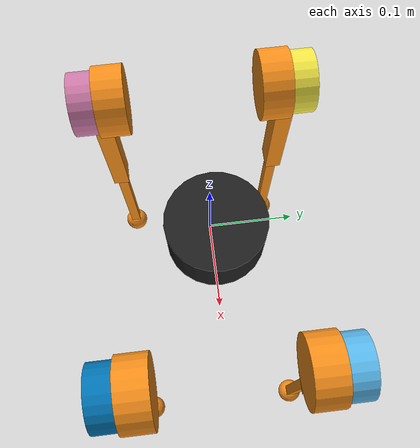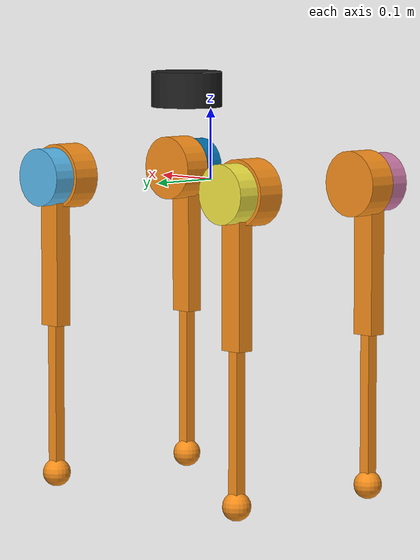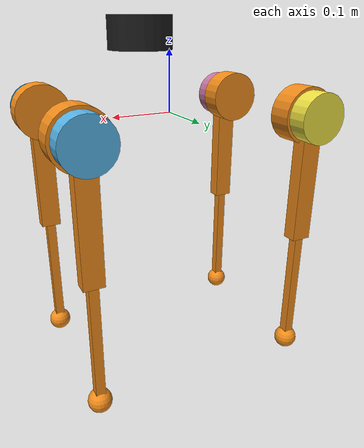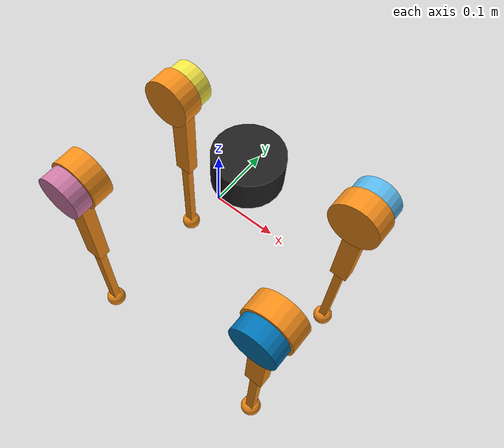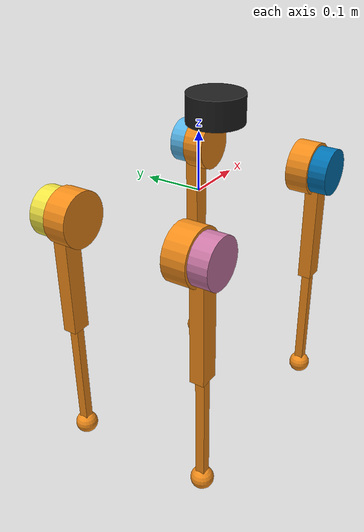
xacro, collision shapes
<?xml version="1.0"?>

<robot name="laikago" xmlns:xacro="http://www.ros.org/wiki/xacro">

    <xacro:arg name="DEBUG" default="false"/>

    <xacro:include filename="$(find arena-simulation-setup)/robot/laikago/urdf/const.xacro"/>
    <xacro:include filename="$(find arena-simulation-setup)/robot/laikago/urdf/materials.xacro"/>
    <xacro:include filename="$(find arena-simulation-setup)/robot/laikago/urdf/leg.xacro"/>
    <xacro:include filename="$(find arena-simulation-setup)/robot/laikago/urdf/gazebo.xacro"/>
    <xacro:include filename="$(find arena-simulation-setup)/robot/laikago/urdf/lidar.xacro"/>

    <!-- Rollover Protection mode will add an additional stick on the top, use "true" or "false" to switch it. -->
    <xacro:property name="rolloverProtection" value="false"/>

    <!-- Debug mode will hung up the robot, use "true" or "false" to switch it. -->
    <xacro:if value="$(arg DEBUG)">
        <link name="world"/>
        <joint name="base_static_joint" type="fixed">
            <origin rpy="0 0 0" xyz="0 0 0"/>
            <parent link="world"/>
            <child link="base"/>
        </joint>
    </xacro:if>

    <link name="base">
        <visual>
            <origin rpy="0 0 0" xyz="0 0 0"/>
            <geometry>
                <box size="0.001 0.001 0.001"/>
            </geometry>
        </visual>
    </link>

    <joint name="floating_base" type="fixed">
        <origin rpy="0 0 0" xyz="0 0 0"/>
        <parent link="base"/>
        <child link="trunk"/>
    </joint>

    <link name="trunk">
        <visual>
            <origin rpy="0 0 0" xyz="0 0 0"/>
            <geometry>
                <mesh filename="package://arena-simulation-setup/robot/laikago/urdf/meshes/trunk.dae" scale="1 1 1"/>
            </geometry>
            <material name="orange"/>
        </visual>
        <collision>
            <origin rpy="0 0 0" xyz="0 0 ${trunk_offset_z}"/>
            <geometry>
                <box size="${trunk_length} ${trunk_width} ${trunk_height}"/>
            </geometry>
        </collision>
        <inertial>
            <origin rpy="0 0 0" xyz="${trunk_com_x} ${trunk_com_y} ${trunk_com_z}"/>
            <mass value="${trunk_mass}"/>
            <inertia
                ixx="${trunk_ixx}" ixy="${trunk_ixy}" ixz="${trunk_ixz}"
                iyy="${trunk_iyy}" iyz="${trunk_iyz}"
                izz="${trunk_izz}"/>
        </inertial>
    </link>

    <xacro:if value="${(rolloverProtection == 'true')}">
        <joint name="stick_joint" type="fixed">
            <parent link="trunk"/>
            <child link="stick_link"/>
            <origin rpy="0 0 0" xyz="${0.18} 0 ${stick_length/2.0+0.08}"/>
        </joint>

        <link name="stick_link">
            <visual>
                <geometry>
                    <cylinder length="${stick_length}" radius="${stick_radius}"/>
                </geometry>
                <origin rpy="0 0 0" xyz="0 0 0"/>
                <material name="white"/>
            </visual>
            <collision>
                <geometry>
                    <cylinder length="${stick_length}" radius="${stick_radius}"/>
                </geometry>
                <origin rpy="0 0 0" xyz="0 0 0"/>
            </collision>
            <inertial>
                <mass value="${stick_mass}"/>
                <inertia
                    ixx="${stick_mass / 2.0 * (stick_radius*stick_radius)}" ixy="0.0" ixz="0.0"
                    iyy="${stick_mass / 12.0 * (3*stick_radius*stick_radius + stick_length*stick_length)}" iyz="0.0"
                    izz="${stick_mass / 12.0 * (3*stick_radius*stick_radius + stick_length*stick_length)}"/>
            </inertial>
        </link>
    </xacro:if>

    <joint name="imu_joint" type="fixed">
        <parent link="trunk"/>
        <child link="imu_link"/>
        <origin rpy="0 0 0" xyz="0 0 0"/>
    </joint>

    <link name="imu_link">
        <inertial>
            <mass value="0.001"/>
            <origin rpy="0 0 0" xyz="0 0 0"/>
            <inertia ixx="0.0001" ixy="0" ixz="0" iyy="0.0001" iyz="0" izz="0.0001"/>
        </inertial>
        <visual>
            <origin rpy="0 0 0" xyz="0 0 0"/>
            <geometry>
                <box size="0.001 0.001 0.001"/>
            </geometry>
            <material name="red"/>
        </visual>
        <collision>
            <origin rpy="0 0 0" xyz="0 0 0"/>
            <geometry>
                <box size=".001 .001 .001"/>
            </geometry>
        </collision>
    </link>
    <xacro:leg name="FR" mirror="-1" mirror_dae="False" front_hind="1" front_hind_dae="True">
        <origin rpy="0 0 0" xyz="${leg_offset_x} ${-leg_offset_y} 0"/>
    </xacro:leg>

    <xacro:leg name="FL" mirror="1" mirror_dae="True" front_hind="1" front_hind_dae="True">
        <origin rpy="0 0 0" xyz="${leg_offset_x} ${leg_offset_y} 0"/>
    </xacro:leg>

    <xacro:leg name="RR" mirror="-1" mirror_dae="False" front_hind="-1" front_hind_dae="False">
        <origin rpy="0 0 0" xyz="${-leg_offset_x} ${-leg_offset_y} 0"/>
    </xacro:leg>

    <xacro:leg name="RL" mirror="1" mirror_dae="True" front_hind="-1" front_hind_dae="False">
        <origin rpy="0 0 0" xyz="${-leg_offset_x} ${leg_offset_y} 0"/>
    </xacro:leg>

    <xacro:lidar parent="trunk">
        <origin rpy="0 0 0" xyz="0.05 0 0.125"/>
    </xacro:lidar>

</robot>

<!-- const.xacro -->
<robot xmlns:xacro="http://www.ros.org/wiki/xacro">

    <!-- Constants for robot dimensions -->
    <xacro:property name="PI" value="3.1415926535897931"/>
    <xacro:property name="stick_mass" value="0.00001"/>

    <!-- simplified collision value -->
    <xacro:property name="trunk_width" value="0.0935"/>
    <xacro:property name="trunk_length" value="0.3762"/>
    <xacro:property name="trunk_height" value="0.114"/>
    <xacro:property name="hip_radius" value="0.046"/>
    <xacro:property name="hip_length" value="0.04"/>
    <xacro:property name="thigh_shoulder_radius" value="0.041"/>
    <xacro:property name="thigh_shoulder_length" value="0.032"/>
    <xacro:property name="thigh_width" value="0.0245"/>
    <xacro:property name="thigh_height" value="0.034"/>
    <xacro:property name="calf_width" value="0.016"/>
    <xacro:property name="calf_height" value="0.016"/>
    <xacro:property name="foot_radius" value="0.02"/>
    <xacro:property name="stick_radius" value="0.01"/>
    <xacro:property name="stick_length" value="0.2"/>

    <!-- kinematic value -->
    <xacro:property name="thigh_offset" value="0.08"/>
    <xacro:property name="thigh_length" value="0.213"/>
    <xacro:property name="calf_length" value="0.213"/>

    <!-- leg offset from trunk center value -->
    <xacro:property name="leg_offset_x" value="0.1881"/>
    <xacro:property name="leg_offset_y" value="0.04675"/>
    <xacro:property name="hip_offset" value="0.08"/>

    <!-- offset of link and rotor locations (left front) -->
    <xacro:property name="hip_offset_x" value="0.1881"/>
    <xacro:property name="hip_offset_y" value="0.04675"/>
    <xacro:property name="hip_offset_z" value="0.0"/>
    <xacro:property name="hip_rotor_offset_x" value="0.11215"/>
    <xacro:property name="hip_rotor_offset_y" value="0.04675"/>
    <xacro:property name="hip_rotor_offset_z" value="0.0"/>

    <xacro:property name="thigh_offset_x" value="0"/>
    <xacro:property name="thigh_offset_y" value="0.08"/>
    <xacro:property name="thigh_offset_z" value="0.0"/>
    <xacro:property name="thigh_rotor_offset_x" value="0.0"/>
    <xacro:property name="thigh_rotor_offset_y" value="-0.00015"/>
    <xacro:property name="thigh_rotor_offset_z" value="0.0"/>

    <xacro:property name="calf_offset_x" value="0.0"/>
    <xacro:property name="calf_offset_y" value="0.0"/>
    <xacro:property name="calf_offset_z" value="-0.213"/>
    <xacro:property name="calf_rotor_offset_x" value="0.0"/>
    <xacro:property name="calf_rotor_offset_y" value="-0.03235"/>
    <xacro:property name="calf_rotor_offset_z" value="0.0"/>

    <!-- joint limits -->
    <xacro:property name="damping" value="0.01"/>
    <xacro:property name="friction" value="0.2"/>
    <xacro:property name="hip_position_max" value="0.863"/>
    <xacro:property name="hip_position_min" value="-0.863"/>
    <xacro:property name="hip_velocity_max" value="30.1"/>
    <xacro:property name="hip_torque_max" value="23.7"/>
    <xacro:property name="thigh_position_max" value="4.501"/>
    <xacro:property name="thigh_position_min" value="-0.686"/>
    <xacro:property name="thigh_velocity_max" value="30.1"/>
    <xacro:property name="thigh_torque_max" value="23.7"/>
    <xacro:property name="calf_position_max" value="-0.888"/>
    <xacro:property name="calf_position_min" value="-2.818"/>
    <xacro:property name="calf_velocity_max" value="20.06"/>
    <xacro:property name="calf_torque_max" value="35.55"/>

    <!-- dynamics inertial value        total 12.84kg -->
    <!-- trunk -->
    <xacro:property name="trunk_mass" value="5.204"/>
    <xacro:property name="trunk_com_x" value="0.0223"/>
    <xacro:property name="trunk_com_y" value="0.002"/>
    <xacro:property name="trunk_com_z" value="-0.0005"/>
    <xacro:property name="trunk_ixx" value="0.0168128557"/>
    <xacro:property name="trunk_ixy" value="-0.0002296769"/>
    <xacro:property name="trunk_ixz" value="-0.0002945293"/>
    <xacro:property name="trunk_iyy" value="0.063009565"/>
    <xacro:property name="trunk_iyz" value="-0.0000418731"/>
    <xacro:property name="trunk_izz" value="0.0716547275"/>

    <!-- hip (left front) -->
    <xacro:property name="hip_mass" value="0.591"/>
    <xacro:property name="hip_com_x" value="-0.005657"/>
    <xacro:property name="hip_com_y" value="-0.008752"/>
    <xacro:property name="hip_com_z" value="-0.000102"/>
    <xacro:property name="hip_ixx" value="0.000334008405"/>
    <xacro:property name="hip_ixy" value="-0.000010826066"/>
    <xacro:property name="hip_ixz" value="0.000001290732"/>
    <xacro:property name="hip_iyy" value="0.000619101213"/>
    <xacro:property name="hip_iyz" value="0.000001643194"/>
    <xacro:property name="hip_izz" value="0.00040057614"/>

    <xacro:property name="hip_rotor_mass" value="0.089"/>
    <xacro:property name="hip_rotor_com_x" value="0.0"/>
    <xacro:property name="hip_rotor_com_y" value="0.0"/>
    <xacro:property name="hip_rotor_com_z" value="0.0"/>
    <xacro:property name="hip_rotor_ixx" value="0.000111842"/>
    <xacro:property name="hip_rotor_ixy" value="0.0"/>
    <xacro:property name="hip_rotor_ixz" value="0.0"/>
    <xacro:property name="hip_rotor_iyy" value="0.000059647"/>
    <xacro:property name="hip_rotor_iyz" value="0.0"/>
    <xacro:property name="hip_rotor_izz" value="0.000059647"/>

    <!-- thigh -->
    <xacro:property name="thigh_mass" value="0.92"/>
    <xacro:property name="thigh_com_x" value="-0.003342"/>
    <xacro:property name="thigh_com_y" value="-0.018054"/>
    <xacro:property name="thigh_com_z" value="-0.033451"/>
    <xacro:property name="thigh_ixx" value="0.004431760472"/>
    <xacro:property name="thigh_ixy" value="0.000057496807"/>
    <xacro:property name="thigh_ixz" value="-0.000218457134"/>
    <xacro:property name="thigh_iyy" value="0.004485671726"/>
    <xacro:property name="thigh_iyz" value="0.000572001265"/>
    <xacro:property name="thigh_izz" value="0.000740309489"/>

    <xacro:property name="thigh_rotor_mass" value="0.089"/>
    <xacro:property name="thigh_rotor_com_x" value="0.0"/>
    <xacro:property name="thigh_rotor_com_y" value="0.0"/>
    <xacro:property name="thigh_rotor_com_z" value="0.0"/>
    <xacro:property name="thigh_rotor_ixx" value="0.000059647"/>
    <xacro:property name="thigh_rotor_ixy" value="0.0"/>
    <xacro:property name="thigh_rotor_ixz" value="0.0"/>
    <xacro:property name="thigh_rotor_iyy" value="0.000111842"/>
    <xacro:property name="thigh_rotor_iyz" value="0.0"/>
    <xacro:property name="thigh_rotor_izz" value="0.000059647"/>

    <!-- calf -->
    <xacro:property name="calf_mass" value="0.135862"/>
    <xacro:property name="calf_com_x" value="0.006197"/>
    <xacro:property name="calf_com_y" value="0.001408"/>
    <xacro:property name="calf_com_z" value="-0.116695"/>
    <xacro:property name="calf_ixx" value="0.001088793059"/>
    <xacro:property name="calf_ixy" value="-0.000000255679"/>
    <xacro:property name="calf_ixz" value="0.000007117814"/>
    <xacro:property name="calf_iyy" value="0.001100428748"/>
    <xacro:property name="calf_iyz" value="0.000002077264"/>
    <xacro:property name="calf_izz" value="0.000024787446"/>

    <xacro:property name="calf_rotor_mass" value="0.089"/>
    <xacro:property name="calf_rotor_com_x" value="0.0"/>
    <xacro:property name="calf_rotor_com_y" value="0.0"/>
    <xacro:property name="calf_rotor_com_z" value="0.0"/>
    <xacro:property name="calf_rotor_ixx" value="0.000059647"/>
    <xacro:property name="calf_rotor_ixy" value="0.0"/>
    <xacro:property name="calf_rotor_ixz" value="0.0"/>
    <xacro:property name="calf_rotor_iyy" value="0.000111842"/>
    <xacro:property name="calf_rotor_iyz" value="0.0"/>
    <xacro:property name="calf_rotor_izz" value="0.000059647"/>

    <!-- foot -->
    <xacro:property name="foot_mass" value="0.06"/>

</robot>

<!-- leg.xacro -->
<robot xmlns:xacro="http://www.ros.org/wiki/xacro">

    <xacro:include filename="$(find arena-simulation-setup)/robot/laikago/urdf/transmission.xacro"/>

    <xacro:macro name="leg" params="name mirror mirror_dae front_hind front_hind_dae *origin">

        <joint name="${name}_hip_joint" type="revolute">
            <xacro:insert_block name="origin"/>
            <parent link="trunk"/>
            <child link="${name}_hip"/>
            <axis xyz="1 0 0"/>
            <dynamics damping="${damping}" friction="${friction}"/>
            <xacro:if value="${(mirror_dae == True)}">
                <limit effort="${hip_torque_max}" velocity="${hip_velocity_max}" lower="${hip_min*PI/180.0}" upper="${hip_max*PI/180.0}"/>
            </xacro:if>
            <xacro:if value="${(mirror_dae == False)}">
                <limit effort="${hip_torque_max}" velocity="${hip_velocity_max}" lower="${-hip_max*PI/180.0}" upper="${-hip_min*PI/180.0}"/>
            </xacro:if>
        </joint>

        <link name="${name}_hip">
            <visual>
                <xacro:if value="${(mirror_dae == True) and (front_hind_dae == True)}">
                    <origin rpy="0 0 0" xyz="0 0 0"/>
                </xacro:if>
                <xacro:if value="${(mirror_dae == False) and (front_hind_dae == True)}">
                    <origin rpy="${PI} 0 0" xyz="0 0 0"/>
                </xacro:if>
                <xacro:if value="${(mirror_dae == True) and (front_hind_dae == False)}">
                    <origin rpy="0 ${PI} 0" xyz="0 0 0"/>
                </xacro:if>
                <xacro:if value="${(mirror_dae == False) and (front_hind_dae == False)}">
                    <origin rpy="${PI} ${PI} 0" xyz="0 0 0"/>
                </xacro:if>
                <geometry>
                    <mesh filename="package://arena-simulation-setup/robot/laikago/urdf/meshes/hip.dae" scale="1 1 1"/>
                </geometry>
                <material name="orange"/>
            </visual>
            <collision>
                <origin rpy="${PI/2.0} 0 0" xyz="0 ${-(hip_length/2.0-hip_offset)*mirror} 0"/>
                <geometry>
                    <cylinder length="${hip_length}" radius="${hip_radius}"/>
                </geometry>
            </collision>
            <inertial>
                <origin rpy="0 0 0" xyz="${hip_com_x*front_hind} ${hip_com_y*mirror} ${hip_com_z}"/>
                <mass value="${hip_mass}"/>
                <inertia
                    ixx="${hip_ixx}" ixy="${hip_ixy*mirror*front_hind}" ixz="${hip_ixz*front_hind}"
                    iyy="${hip_iyy}" iyz="${hip_iyz*mirror}"
                    izz="${hip_izz}"/>
            </inertial>
        </link>

        <joint name="${name}_hip_fixed" type="fixed">
            <origin rpy="0 0 0" xyz="0 ${(thigh_shoulder_length/2.0+hip_offset)*mirror} 0"/>
            <parent link="${name}_hip"/>
            <child link="${name}_thigh_shoulder"/>
        </joint>

        <!-- this link is only for collision -->
        <link name="${name}_thigh_shoulder">
            <collision>
                <origin rpy="${PI/2.0} 0 0" xyz="0 0 0"/>
                <geometry>
                    <cylinder length="${thigh_shoulder_length}" radius="${thigh_shoulder_radius}"/>
                </geometry>
            </collision>
        </link>

        <joint name="${name}_thigh_joint" type="revolute">
            <origin rpy="0 0 0" xyz="0 ${thigh_offset*mirror} 0"/>
            <parent link="${name}_hip"/>
            <child link="${name}_thigh"/>
            <axis xyz="0 1 0"/>
            <dynamics damping="${damping}" friction="${friction}"/>
            <limit effort="${thigh_torque_max}" velocity="${thigh_velocity_max}" lower="${thigh_min*PI/180.0}" upper="${thigh_max*PI/180.0}"/>
        </joint>

        <link name="${name}_thigh">
            <visual>
                <origin rpy="0 0 0" xyz="0 0 0"/>
                <geometry>
                    <xacro:if value="${mirror_dae == True}">
                        <mesh filename="package://arena-simulation-setup/robot/laikago/urdf/meshes/thigh.dae" scale="1 1 1"/>
                    </xacro:if>
                    <xacro:if value="${mirror_dae == False}">
                        <mesh filename="package://arena-simulation-setup/robot/laikago/urdf/meshes/thigh_mirror.dae" scale="1 1 1"/>
                    </xacro:if>
                </geometry>
                <material name="orange"/>
            </visual>
            <collision>
                <origin rpy="0 ${PI/2.0} 0" xyz="0 0 ${-thigh_length/2.0}"/>
                <geometry>
                    <box size="${thigh_length} ${thigh_width} ${thigh_height}"/>
                </geometry>
            </collision>
            <inertial>
                <origin rpy="0 0 0" xyz="${thigh_com_x} ${thigh_com_y*mirror} ${thigh_com_z}"/>
                <mass value="${thigh_mass}"/>
                <inertia
                    ixx="${thigh_ixx}" ixy="${thigh_ixy*mirror}" ixz="${thigh_ixz}"
                    iyy="${thigh_iyy}" iyz="${thigh_iyz*mirror}"
                    izz="${thigh_izz}"/>
            </inertial>
        </link>

        <joint name="${name}_calf_joint" type="revolute">
            <origin rpy="0 0 0" xyz="0 0 ${-thigh_length}"/>
            <parent link="${name}_thigh"/>
            <child link="${name}_calf"/>
            <axis xyz="0 1 0"/>
            <dynamics damping="${damping}" friction="${friction}"/>
            <limit effort="${calf_torque_max}" velocity="${calf_velocity_max}" lower="${calf_min*PI/180.0}" upper="${calf_max*PI/180.0}"/>
        </joint>

        <link name="${name}_calf">
            <visual>
                <origin rpy="0 0 0" xyz="0 0 0"/>
                <geometry>
                    <mesh filename="package://arena-simulation-setup/robot/laikago/urdf/meshes/calf.dae" scale="1 1 1"/>
                </geometry>
                <material name="orange"/>
            </visual>
            <collision>
                <origin rpy="0 ${PI/2.0} 0" xyz="0 0 ${-calf_length/2.0}"/>
                <geometry>
                    <box size="${calf_length} ${calf_width} ${calf_height}"/>
                </geometry>
            </collision>
            <inertial>
                <origin rpy="0 0 0" xyz="${calf_com_x} ${calf_com_y} ${calf_com_z}"/>
                <mass value="${calf_mass}"/>
                <inertia
                    ixx="${calf_ixx}" ixy="${calf_ixy}" ixz="${calf_ixz}"
                    iyy="${calf_iyy}" iyz="${calf_iyz}"
                    izz="${calf_izz}"/>
            </inertial>
        </link>

        <joint name="${name}_foot_fixed" type="fixed">
            <origin rpy="0 0 0" xyz="0 0 ${-(calf_length)}"/>
            <parent link="${name}_calf"/>
            <child link="${name}_foot"/>
        </joint>

        <link name="${name}_foot">
            <visual>
                <origin rpy="0 0 0" xyz="0 0 0"/>
                <geometry>
                    <sphere radius="${foot_radius-0.01}"/>
                </geometry>
                <material name="orange"/>
            </visual>
            <collision>
                <origin rpy="0 0 0" xyz="0 0 0"/>
                <geometry>
                    <sphere radius="${foot_radius}"/>
                </geometry>
            </collision>
            <inertial>
                <mass value="${foot_mass}"/>
                <inertia
                    ixx="${(2*foot_mass)/5.0*(foot_radius*foot_radius)}" ixy="0.0" ixz="0.0"
                    iyy="${(2*foot_mass)/5.0*(foot_radius*foot_radius)}" iyz="0.0"
                    izz="${(2*foot_mass)/5.0*(foot_radius*foot_radius)}"/>
            </inertial>
        </link>

        <xacro:leg_transmission name="${name}"/>
    </xacro:macro>
</robot>

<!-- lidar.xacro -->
<robot xmlns:xacro="http://www.ros.org/wiki/xacro" name="hokuyo">

<xacro:macro name="lidar" params="parent *origin">
    <joint name="laser_joint" type="fixed">
        <xacro:insert_block name="origin"/>
        <parent link="${parent}"/>
        <child link="laser_link"/>
    </joint>

    <link name="laser_link">
        <collision>
            <origin xyz="0 0 0" rpy="0 0 0"/>
            <geometry>
                <cylinder radius="0.05" length="0.05"/>
            </geometry>
        </collision>
        <visual>
            <origin xyz="0 0 0" rpy="0 0 0"/>
            <geometry>
                <cylinder radius="0.05" length="0.05"/>
            </geometry>
            <material name="black"/>
        </visual>
        <inertial>
            <mass value="1e-5" />
            <origin xyz="0 0 0" rpy="0 0 0"/>
            <inertia ixx="1e-6" ixy="0" ixz="0" iyy="1e-6" iyz="0" izz="1e-6" />
        </inertial>
    </link>

    <gazebo reference="laser_link">
        <material>Gazebo/Black</material>
        <gravity>true</gravity>
        <sensor type="ray" name="laser">
            <pose>0 0 0 0 0 0</pose>
            <visualize>false</visualize>
            <update_rate>40</update_rate>
            <ray>
                <scan>
                    <horizontal>
                        <samples>360</samples>
                        <resolution>1</resolution>
                        <min_angle>${-pi}</min_angle>
                        <max_angle>${pi}</max_angle>
                    </horizontal>
                </scan>
                <range>
                    <min>0.2</min>
                    <max>40</max>
                    <resolution>0.025</resolution>
                </range>
                <noise>
                    <type>gaussian</type>
                    <mean>0.0</mean>
                    <stddev>0.0</stddev>
                </noise>
            </ray>
            <plugin name="laser_controller" filename="libgazebo_ros_laser.so">
                <topicName>scan</topicName>
                <frameName>laser_link</frameName>
            </plugin>
        </sensor>
    </gazebo>

</xacro:macro>

</robot>
